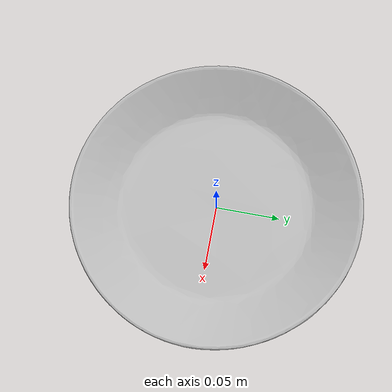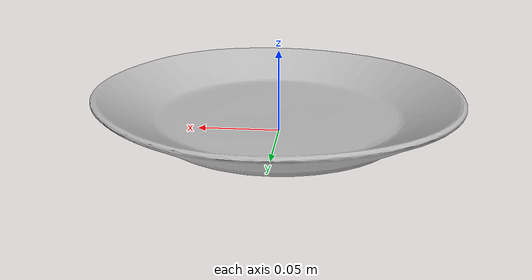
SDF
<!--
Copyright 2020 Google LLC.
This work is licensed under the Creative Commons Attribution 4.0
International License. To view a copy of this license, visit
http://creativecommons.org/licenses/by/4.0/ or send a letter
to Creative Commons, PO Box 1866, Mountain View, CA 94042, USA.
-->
<?xml version="1.0" ?>
<sdf version="1.6">
  <model name="Room_Essentials_Salad_Plate_Turquoise">
    <link name="link_0">
      <visual name="visual">
        <geometry>
          <mesh>
            <uri>meshes/model.obj</uri>
          </mesh>
        </geometry>
      </visual>
      <collision name="collision_0">
        <geometry>
          <mesh>
            <uri>meshes/model.obj</uri>
          </mesh>
        </geometry>
      </collision>
    </link>
  </model>
</sdf>
